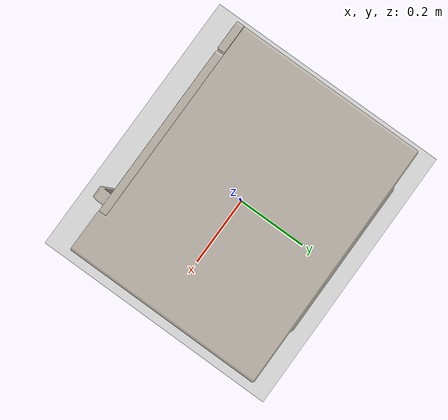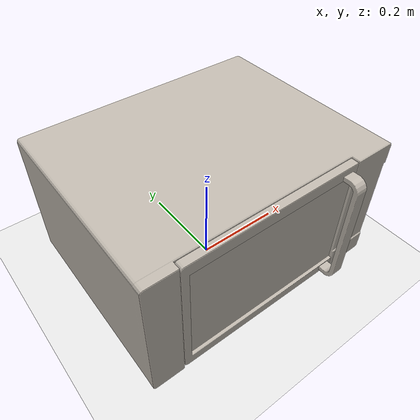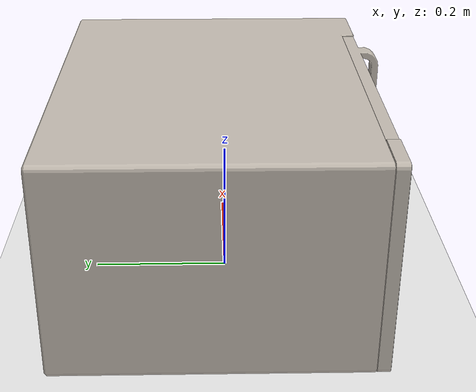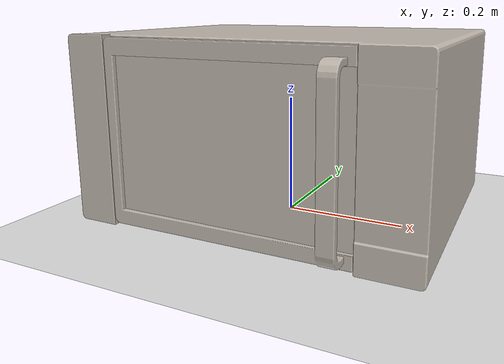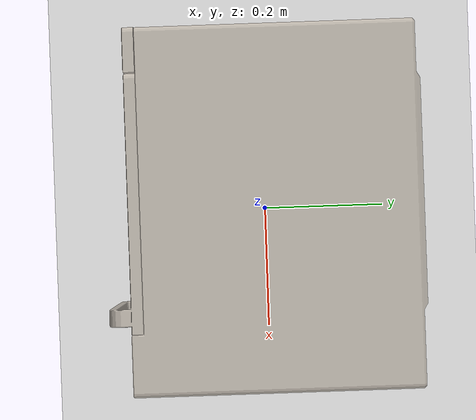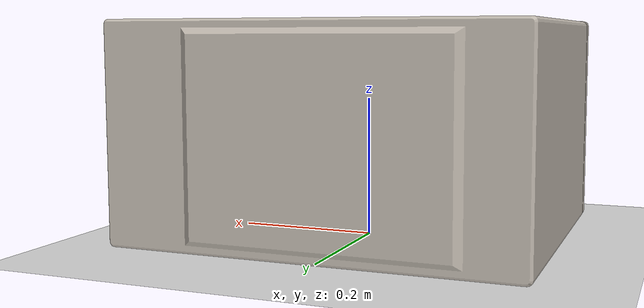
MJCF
<mujoco model="Microwave011">
  <compiler
    angle="radian"
    assetdir="../../examples/mujoco_models/Microwave011_obj"
    texturedir="../../Lightwheel/Microwave011/texture"
  />

  <visual>
    <global offwidth="1024" offheight="1024" />
  </visual>

  <asset>
    <texture name="T_Microwave011_BC001" type="2d" file="T_Microwave011_BC001.png" />
    <material
      name="material_0"
      texture="T_Microwave011_BC001"
      rgba="1 1 1 1"
      texuniform="false"
      texrepeat="1 1"
      specular="0"
      reflectance="0"
      shininess="0"
    />
    <texture name="T_Microwave011_ORM001" type="2d" file="T_Microwave011_ORM001.png" />
    <material
      name="material_1"
      texture="T_Microwave011_ORM001"
      rgba="1 1 1 1"
      texuniform="false"
      texrepeat="1 1"
      specular="0"
      reflectance="0"
      shininess="0"
    />
    <mesh name="Microwave011_Body001" file="Microwave011_Body001.obj" />
    <mesh name="Microwave011_door" file="Microwave011_door.obj" />
    <mesh name="Microwave011_door_Clear" file="Microwave011_door_Clear.obj" />
    <mesh name="Microwave011_Disc001" file="Microwave011_Disc001.obj" />
  </asset>

  <worldbody>
    <geom name="ground" type="plane" size="5 5 0.1" rgba="0.9 0.9 0.9 1" />
    <light pos="0 0 3" dir="0 0 -1" diffuse="0.7 0.7 0.7" specular="0.3 0.3 0.3" />
    <light pos="2 2 2" dir="-1 -1 -1" diffuse="0.6 0.6 0.6" specular="0.2 0.2 0.2" />

    <!-- Main object body -->
    <body name="Microwave011" pos="0 0 0.156858">
    <inertial pos="0 0 0" quat="1 0 0 0" mass="16.251623" diaginertia="1 1 1" />

      <geom type="mesh" mesh="Microwave011_Body001" material="material_0" />

      <body name="Microwave011_door" pos="0 0 0">
        <joint
          name="microjoint"
          type="hinge"
          axis="0.000000 0.000000 1.000000"
          pos="-0.204784 -0.200203 0.009386"
          damping="1.0"
          limited="true"
          range="-1.570796 0.000000"
        />
        <geom type="mesh" mesh="Microwave011_door" material="material_0" />
        <geom type="mesh" mesh="Microwave011_door_Clear" material="material_0" />
      </body>
      <body name="Microwave011_Disc001" pos="0 0 0">
        <joint
          name="Disc001_joint"
          type="hinge"
          axis="0.000000 0.000000 1.000000"
          pos="-0.006323 -0.013594 -0.110868"
          damping="1.0"
          limited="true"
          range="0.000000 359.999989"
        />
        <geom type="mesh" mesh="Microwave011_Disc001" material="material_0" />
      </body>
    </body>
  </worldbody>
</mujoco>
